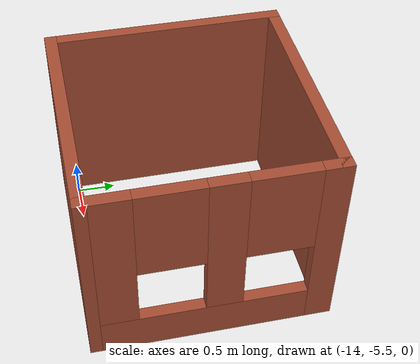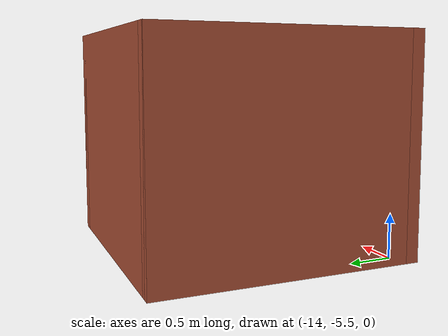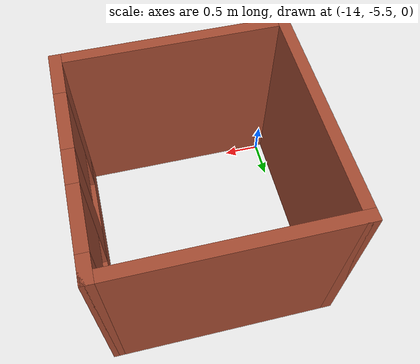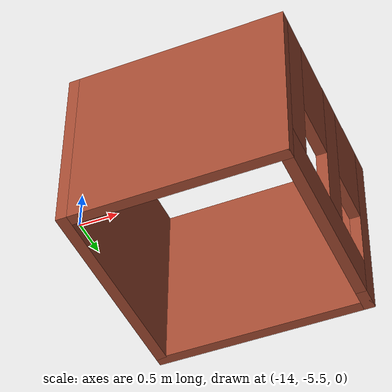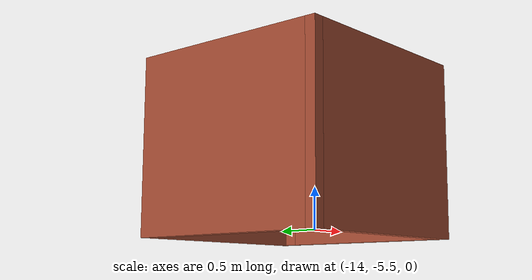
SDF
<?xml version='1.0'?>
<sdf version='1.7'>
  <model name='Test'>
    <pose>-7.1175 -2.8475 0 0 -0 0</pose>
    <link name='Wall_0'>
      <pose>-4.1925 -1.3475 0 0 -0 -1.5708</pose>
      <visual name='Wall_0_Visual_0'>
        <pose>-1.3325 0 1.25 0 -0 0</pose>
        <geometry>
          <box>
            <size>0.335 0.15 2.5</size>
          </box>
        </geometry>
        <material>
          <script>
            <uri>file://media/materials/scripts/gazebo.material</uri>
            <name>Gazebo/Bricks</name>
          </script>
          <ambient>1 1 1 1</ambient>
        </material>
        <meta>
          <layer>0</layer>
        </meta>
      </visual>
      <collision name='Wall_0_Collision_0'>
        <geometry>
          <box>
            <size>0.335 0.15 2.5</size>
          </box>
        </geometry>
        <pose>-1.3325 0 1.25 0 -0 0</pose>
      </collision>
      <visual name='Wall_0_Visual_1'>
        <pose>0.1675 0 0.25 0 -0 0</pose>
        <geometry>
          <box>
            <size>2.665 0.15 0.5</size>
          </box>
        </geometry>
        <material>
          <script>
            <uri>file://media/materials/scripts/gazebo.material</uri>
            <name>Gazebo/Bricks</name>
          </script>
          <ambient>1 1 1 1</ambient>
        </material>
        <meta>
          <layer>0</layer>
        </meta>
      </visual>
      <collision name='Wall_0_Collision_1'>
        <geometry>
          <box>
            <size>2.665 0.15 0.5</size>
          </box>
        </geometry>
        <pose>0.1675 0 0.25 0 -0 0</pose>
      </collision>
      <visual name='Wall_0_Visual_2'>
        <pose>-0.14 0 1.5 0 -0 0</pose>
        <geometry>
          <box>
            <size>0.45 0.15 2</size>
          </box>
        </geometry>
        <material>
          <script>
            <uri>file://media/materials/scripts/gazebo.material</uri>
            <name>Gazebo/Bricks</name>
          </script>
          <ambient>1 1 1 1</ambient>
        </material>
        <meta>
          <layer>0</layer>
        </meta>
      </visual>
      <collision name='Wall_0_Collision_2'>
        <geometry>
          <box>
            <size>0.45 0.15 2</size>
          </box>
        </geometry>
        <pose>-0.14 0 1.5 0 -0 0</pose>
      </collision>
      <visual name='Wall_0_Visual_3'>
        <pose>1.1925 0 1.5 0 -0 0</pose>
        <geometry>
          <box>
            <size>0.615 0.15 2</size>
          </box>
        </geometry>
        <material>
          <script>
            <uri>file://media/materials/scripts/gazebo.material</uri>
            <name>Gazebo/Bricks</name>
          </script>
          <ambient>1 1 1 1</ambient>
        </material>
        <meta>
          <layer>0</layer>
        </meta>
      </visual>
      <collision name='Wall_0_Collision_3'>
        <geometry>
          <box>
            <size>0.615 0.15 2</size>
          </box>
        </geometry>
        <pose>1.1925 0 1.5 0 -0 0</pose>
      </collision>
      <visual name='Wall_0_Visual_4'>
        <pose>-0.765 0 1.9 0 -0 0</pose>
        <geometry>
          <box>
            <size>0.8 0.15 1.2</size>
          </box>
        </geometry>
        <material>
          <script>
            <uri>file://media/materials/scripts/gazebo.material</uri>
            <name>Gazebo/Bricks</name>
          </script>
          <ambient>1 1 1 1</ambient>
        </material>
        <meta>
          <layer>0</layer>
        </meta>
      </visual>
      <collision name='Wall_0_Collision_4'>
        <geometry>
          <box>
            <size>0.8 0.15 1.2</size>
          </box>
        </geometry>
        <pose>-0.765 0 1.9 0 -0 0</pose>
      </collision>
      <visual name='Wall_0_Visual_5'>
        <pose>0.485 0 1.9 0 -0 0</pose>
        <geometry>
          <box>
            <size>0.8 0.15 1.2</size>
          </box>
        </geometry>
        <material>
          <script>
            <uri>file://media/materials/scripts/gazebo.material</uri>
            <name>Gazebo/Bricks</name>
          </script>
          <ambient>1 1 1 1</ambient>
        </material>
        <meta>
          <layer>0</layer>
        </meta>
      </visual>
      <collision name='Wall_0_Collision_5'>
        <geometry>
          <box>
            <size>0.8 0.15 1.2</size>
          </box>
        </geometry>
        <pose>0.485 0 1.9 0 -0 0</pose>
      </collision>
    </link>
    <link name='Wall_1'>
      <collision name='Wall_1_Collision'>
        <geometry>
          <box>
            <size>3 0.15 2.5</size>
          </box>
        </geometry>
        <pose>0 0 1.25 0 -0 0</pose>
      </collision>
      <visual name='Wall_1_Visual'>
        <pose>0 0 1.25 0 -0 0</pose>
        <geometry>
          <box>
            <size>3 0.15 2.5</size>
          </box>
        </geometry>
        <material>
          <script>
            <uri>file://media/materials/scripts/gazebo.material</uri>
            <name>Gazebo/Bricks</name>
          </script>
          <ambient>1 1 1 1</ambient>
        </material>
        <meta>
          <layer>0</layer>
        </meta>
      </visual>
      <pose>-5.6175 -2.7725 0 0 -0 3.14159</pose>
    </link>
    <link name='Wall_2'>
      <collision name='Wall_2_Collision'>
        <geometry>
          <box>
            <size>3 0.15 2.5</size>
          </box>
        </geometry>
        <pose>0 0 1.25 0 -0 0</pose>
      </collision>
      <visual name='Wall_2_Visual'>
        <pose>0 0 1.25 0 -0 0</pose>
        <geometry>
          <box>
            <size>3 0.15 2.5</size>
          </box>
        </geometry>
        <material>
          <script>
            <uri>file://media/materials/scripts/gazebo.material</uri>
            <name>Gazebo/Bricks</name>
          </script>
          <ambient>1 1 1 1</ambient>
        </material>
        <meta>
          <layer>0</layer>
        </meta>
      </visual>
      <pose>-7.0425 -1.3475 0 0 -0 1.5708</pose>
    </link>
    <link name='Wall_3'>
      <collision name='Wall_3_Collision'>
        <geometry>
          <box>
            <size>3 0.15 2.5</size>
          </box>
        </geometry>
        <pose>0 0 1.25 0 -0 0</pose>
      </collision>
      <visual name='Wall_3_Visual'>
        <pose>0 0 1.25 0 -0 0</pose>
        <geometry>
          <box>
            <size>3 0.15 2.5</size>
          </box>
        </geometry>
        <material>
          <script>
            <uri>file://media/materials/scripts/gazebo.material</uri>
            <name>Gazebo/Bricks</name>
          </script>
          <ambient>1 1 1 1</ambient>
        </material>
        <meta>
          <layer>0</layer>
        </meta>
      </visual>
      <pose>-5.6175 0.0775 0 0 -0 0</pose>
    </link>
    <static>1</static>
  </model>
</sdf>
